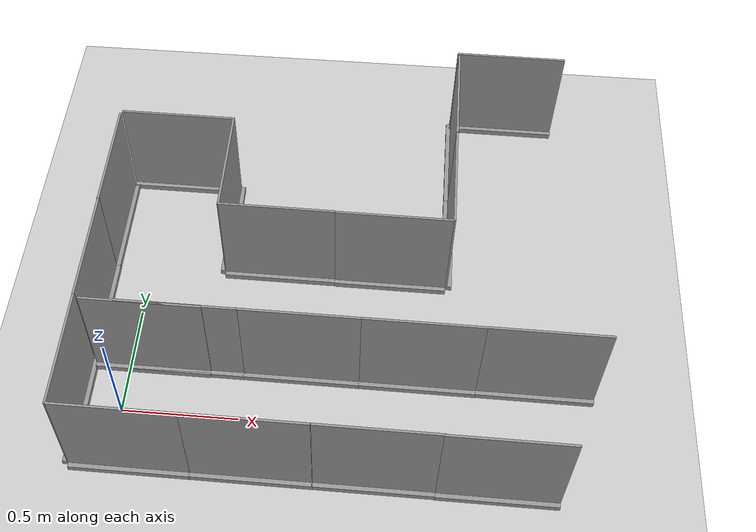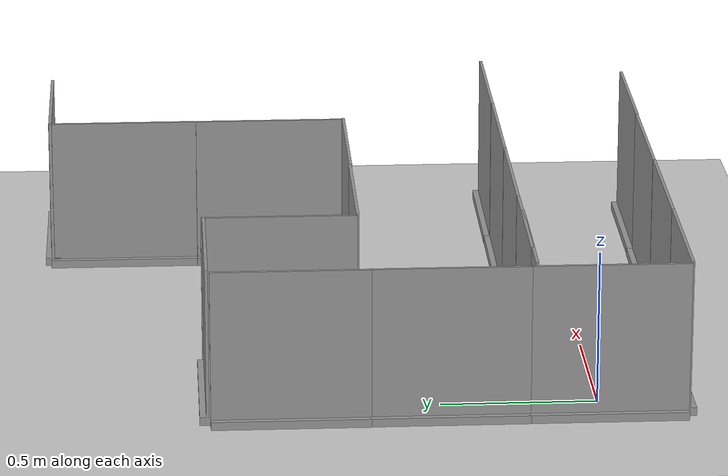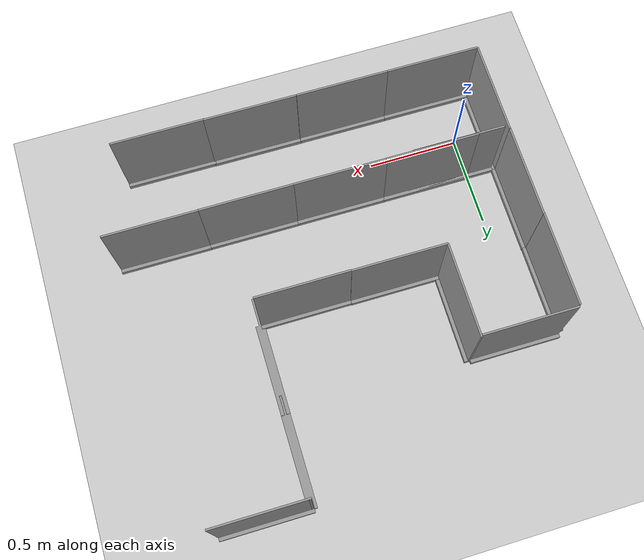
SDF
<sdf version="1.7">
 <world name="default">
  <model name="ground_plane">
   <static>1</static>
   <link name="link">
    <collision name="collision">
     <geometry><plane><normal>0 0 1</normal><size>100 100</size></plane></geometry>
     <surface>
      <contact><collide_bitmask>65535</collide_bitmask></contact>
      <friction><ode><mu>100</mu><mu2>50</mu2></ode></friction>
     </surface>
    </collision>
    <visual name="visual">
     <cast_shadows>0</cast_shadows>
     <geometry><plane><normal>0 0 1</normal><size>100 100</size></plane></geometry>
     <material>
      <script><uri>file://media/materials/scripts/gazebo.material</uri><name>Gazebo/Grey</name></script>
     </material>
    </visual>
   </link>
  </model>
  <model name="Labyrinth_clone_0_clone">
   <link name="link_0">
    <inertial>
     <mass>1</mass>
     <inertia>
      <ixx>0.166667</ixx>
      <ixy>0</ixy>
      <ixz>0</ixz>
      <iyy>0.166667</iyy>
      <iyz>0</iyz>
      <izz>0.166667</izz>
     </inertia>
    </inertial>
    <visual name="visual">
     <geometry>
      <mesh><uri>/home/michael/turtlebot_ws/src/worlds/Labyrinth.dae</uri><scale>1 1 1</scale></mesh>
     </geometry>
     <material>
      <lighting>1</lighting>
      <script><uri>file://media/materials/scripts/gazebo.material</uri><name>Gazebo/Grey</name></script>
      <shader type="pixel"/>
     </material>
    </visual>
    <collision name="collision">
     <geometry>
      <mesh><uri>/home/michael/turtlebot_ws/src/worlds/Labyrinth.dae</uri><scale>1 1 1</scale></mesh>
     </geometry>
     <surface>
      <friction>
       <ode><mu>1</mu><mu2>1</mu2><fdir1>0 0 0</fdir1><slip1>0</slip1><slip2>0</slip2></ode>
       <torsional>
        <coefficient>1</coefficient>
        <patch_radius>0</patch_radius>
        <surface_radius>0</surface_radius>
        <use_patch_radius>1</use_patch_radius>
        <ode><slip>0</slip></ode>
       </torsional>
      </friction>
      <bounce><restitution_coefficient>0</restitution_coefficient><threshold>1e+06</threshold></bounce>
      <contact>
       <collide_without_contact>0</collide_without_contact>
       <collide_without_contact_bitmask>1</collide_without_contact_bitmask>
       <collide_bitmask>1</collide_bitmask>
       <ode>
        <soft_cfm>0</soft_cfm>
        <soft_erp>0.2</soft_erp>
        <kp>1e+13</kp>
        <kd>1</kd>
        <max_vel>0.01</max_vel>
        <min_depth>0</min_depth>
       </ode>
       <bullet>
        <split_impulse>1</split_impulse>
        <split_impulse_penetration_threshold>-0.01</split_impulse_penetration_threshold>
        <soft_cfm>0</soft_cfm>
        <soft_erp>0.2</soft_erp>
        <kp>1e+13</kp>
        <kd>1</kd>
       </bullet>
      </contact>
     </surface>
    </collision>
   </link>
   <static>1</static>
   <pose>0.044521 -0.538425 -0.348859 0 -0 1.56533</pose>
  </model>
  <model name="Labyrinth_clone_0_clone_0">
   <link name="link_0">
    <inertial>
     <mass>1</mass>
     <inertia>
      <ixx>0.166667</ixx>
      <ixy>0</ixy>
      <ixz>0</ixz>
      <iyy>0.166667</iyy>
      <iyz>0</iyz>
      <izz>0.166667</izz>
     </inertia>
    </inertial>
    <visual name="visual">
     <geometry>
      <mesh><uri>/home/michael/turtlebot_ws/src/worlds/Labyrinth.dae</uri><scale>1 1 1</scale></mesh>
     </geometry>
     <material>
      <lighting>1</lighting>
      <script><uri>file://media/materials/scripts/gazebo.material</uri><name>Gazebo/Grey</name></script>
      <shader type="pixel"/>
     </material>
    </visual>
    <collision name="collision">
     <geometry>
      <mesh><uri>/home/michael/turtlebot_ws/src/worlds/Labyrinth.dae</uri><scale>1 1 1</scale></mesh>
     </geometry>
     <surface>
      <friction>
       <ode><mu>1</mu><mu2>1</mu2><fdir1>0 0 0</fdir1><slip1>0</slip1><slip2>0</slip2></ode>
       <torsional>
        <coefficient>1</coefficient>
        <patch_radius>0</patch_radius>
        <surface_radius>0</surface_radius>
        <use_patch_radius>1</use_patch_radius>
        <ode><slip>0</slip></ode>
       </torsional>
      </friction>
      <bounce><restitution_coefficient>0</restitution_coefficient><threshold>1e+06</threshold></bounce>
      <contact>
       <collide_without_contact>0</collide_without_contact>
       <collide_without_contact_bitmask>1</collide_without_contact_bitmask>
       <collide_bitmask>1</collide_bitmask>
       <ode>
        <soft_cfm>0</soft_cfm>
        <soft_erp>0.2</soft_erp>
        <kp>1e+13</kp>
        <kd>1</kd>
        <max_vel>0.01</max_vel>
        <min_depth>0</min_depth>
       </ode>
       <bullet>
        <split_impulse>1</split_impulse>
        <split_impulse_penetration_threshold>-0.01</split_impulse_penetration_threshold>
        <soft_cfm>0</soft_cfm>
        <soft_erp>0.2</soft_erp>
        <kp>1e+13</kp>
        <kd>1</kd>
       </bullet>
      </contact>
     </surface>
    </collision>
   </link>
   <static>1</static>
   <pose>0.549148 -0.540573 -0.348859 0 -0 1.56533</pose>
  </model>
  <model name="Labyrinth_clone_0_clone_1">
   <link name="link_0">
    <inertial>
     <mass>1</mass>
     <inertia>
      <ixx>0.166667</ixx>
      <ixy>0</ixy>
      <ixz>0</ixz>
      <iyy>0.166667</iyy>
      <iyz>0</iyz>
      <izz>0.166667</izz>
     </inertia>
    </inertial>
    <visual name="visual">
     <geometry>
      <mesh><uri>/home/michael/turtlebot_ws/src/worlds/Labyrinth.dae</uri><scale>1 1 1</scale></mesh>
     </geometry>
     <material>
      <lighting>1</lighting>
      <script><uri>file://media/materials/scripts/gazebo.material</uri><name>Gazebo/Grey</name></script>
      <shader type="pixel"/>
     </material>
    </visual>
    <collision name="collision">
     <geometry>
      <mesh><uri>/home/michael/turtlebot_ws/src/worlds/Labyrinth.dae</uri><scale>1 1 1</scale></mesh>
     </geometry>
     <surface>
      <friction>
       <ode><mu>1</mu><mu2>1</mu2><fdir1>0 0 0</fdir1><slip1>0</slip1><slip2>0</slip2></ode>
       <torsional>
        <coefficient>1</coefficient>
        <patch_radius>0</patch_radius>
        <surface_radius>0</surface_radius>
        <use_patch_radius>1</use_patch_radius>
        <ode><slip>0</slip></ode>
       </torsional>
      </friction>
      <bounce><restitution_coefficient>0</restitution_coefficient><threshold>1e+06</threshold></bounce>
      <contact>
       <collide_without_contact>0</collide_without_contact>
       <collide_without_contact_bitmask>1</collide_without_contact_bitmask>
       <collide_bitmask>1</collide_bitmask>
       <ode>
        <soft_cfm>0</soft_cfm>
        <soft_erp>0.2</soft_erp>
        <kp>1e+13</kp>
        <kd>1</kd>
        <max_vel>0.01</max_vel>
        <min_depth>0</min_depth>
       </ode>
       <bullet>
        <split_impulse>1</split_impulse>
        <split_impulse_penetration_threshold>-0.01</split_impulse_penetration_threshold>
        <soft_cfm>0</soft_cfm>
        <soft_erp>0.2</soft_erp>
        <kp>1e+13</kp>
        <kd>1</kd>
       </bullet>
      </contact>
     </surface>
    </collision>
   </link>
   <static>1</static>
   <pose>1.04626 -0.544925 -0.348859 0 -0 1.56533</pose>
  </model>
  <model name="Labyrinth_clone_0_clone_5_clone_1">
   <link name="link_0">
    <inertial>
     <mass>1</mass>
     <inertia>
      <ixx>0.166667</ixx>
      <ixy>0</ixy>
      <ixz>0</ixz>
      <iyy>0.166667</iyy>
      <iyz>0</iyz>
      <izz>0.166667</izz>
     </inertia>
    </inertial>
    <visual name="visual">
     <geometry>
      <mesh><uri>/home/michael/turtlebot_ws/src/worlds/Labyrinth.dae</uri><scale>1 1 1</scale></mesh>
     </geometry>
     <material>
      <lighting>1</lighting>
      <script><uri>file://media/materials/scripts/gazebo.material</uri><name>Gazebo/Grey</name></script>
      <shader type="pixel"/>
     </material>
    </visual>
    <collision name="collision">
     <geometry>
      <mesh><uri>/home/michael/turtlebot_ws/src/worlds/Labyrinth.dae</uri><scale>1 1 1</scale></mesh>
     </geometry>
     <surface>
      <friction>
       <ode><mu>1</mu><mu2>1</mu2><fdir1>0 0 0</fdir1><slip1>0</slip1><slip2>0</slip2></ode>
       <torsional>
        <coefficient>1</coefficient>
        <patch_radius>0</patch_radius>
        <surface_radius>0</surface_radius>
        <use_patch_radius>1</use_patch_radius>
        <ode><slip>0</slip></ode>
       </torsional>
      </friction>
      <bounce><restitution_coefficient>0</restitution_coefficient><threshold>1e+06</threshold></bounce>
      <contact>
       <collide_without_contact>0</collide_without_contact>
       <collide_without_contact_bitmask>1</collide_without_contact_bitmask>
       <collide_bitmask>1</collide_bitmask>
       <ode>
        <soft_cfm>0</soft_cfm>
        <soft_erp>0.2</soft_erp>
        <kp>1e+13</kp>
        <kd>1</kd>
        <max_vel>0.01</max_vel>
        <min_depth>0</min_depth>
       </ode>
       <bullet>
        <split_impulse>1</split_impulse>
        <split_impulse_penetration_threshold>-0.01</split_impulse_penetration_threshold>
        <soft_cfm>0</soft_cfm>
        <soft_erp>0.2</soft_erp>
        <kp>1e+13</kp>
        <kd>1</kd>
       </bullet>
      </contact>
     </surface>
    </collision>
   </link>
   <static>1</static>
   <pose>1.20215 -0.057675 -0.348859 0 -0 1.56533</pose>
  </model>
  <model name="Labyrinth_clone_0_clone_5_clone_2">
   <link name="link_0">
    <inertial>
     <mass>1</mass>
     <inertia>
      <ixx>0.166667</ixx>
      <ixy>0</ixy>
      <ixz>0</ixz>
      <iyy>0.166667</iyy>
      <iyz>0</iyz>
      <izz>0.166667</izz>
     </inertia>
    </inertial>
    <visual name="visual">
     <geometry>
      <mesh><uri>/home/michael/turtlebot_ws/src/worlds/Labyrinth.dae</uri><scale>1 1 1</scale></mesh>
     </geometry>
     <material>
      <lighting>1</lighting>
      <script><uri>file://media/materials/scripts/gazebo.material</uri><name>Gazebo/Grey</name></script>
      <shader type="pixel"/>
     </material>
    </visual>
    <collision name="collision">
     <geometry>
      <mesh><uri>/home/michael/turtlebot_ws/src/worlds/Labyrinth.dae</uri><scale>1 1 1</scale></mesh>
     </geometry>
     <surface>
      <friction>
       <ode><mu>1</mu><mu2>1</mu2><fdir1>0 0 0</fdir1><slip1>0</slip1><slip2>0</slip2></ode>
       <torsional>
        <coefficient>1</coefficient>
        <patch_radius>0</patch_radius>
        <surface_radius>0</surface_radius>
        <use_patch_radius>1</use_patch_radius>
        <ode><slip>0</slip></ode>
       </torsional>
      </friction>
      <bounce><restitution_coefficient>0</restitution_coefficient><threshold>1e+06</threshold></bounce>
      <contact>
       <collide_without_contact>0</collide_without_contact>
       <collide_without_contact_bitmask>1</collide_without_contact_bitmask>
       <collide_bitmask>1</collide_bitmask>
       <ode>
        <soft_cfm>0</soft_cfm>
        <soft_erp>0.2</soft_erp>
        <kp>1e+13</kp>
        <kd>1</kd>
        <max_vel>0.01</max_vel>
        <min_depth>0</min_depth>
       </ode>
       <bullet>
        <split_impulse>1</split_impulse>
        <split_impulse_penetration_threshold>-0.01</split_impulse_penetration_threshold>
        <soft_cfm>0</soft_cfm>
        <soft_erp>0.2</soft_erp>
        <kp>1e+13</kp>
        <kd>1</kd>
       </bullet>
      </contact>
     </surface>
    </collision>
   </link>
   <static>1</static>
   <pose>0.700941 -0.055791 -0.348859 0 -0 1.56533</pose>
  </model>
  <model name="Labyrinth_clone_0_clone_5_clone_3">
   <link name="link_0">
    <inertial>
     <mass>1</mass>
     <inertia>
      <ixx>0.166667</ixx>
      <ixy>0</ixy>
      <ixz>0</ixz>
      <iyy>0.166667</iyy>
      <iyz>0</iyz>
      <izz>0.166667</izz>
     </inertia>
    </inertial>
    <visual name="visual">
     <geometry>
      <mesh><uri>/home/michael/turtlebot_ws/src/worlds/Labyrinth.dae</uri><scale>1 1 1</scale></mesh>
     </geometry>
     <material>
      <lighting>1</lighting>
      <script><uri>file://media/materials/scripts/gazebo.material</uri><name>Gazebo/Grey</name></script>
      <shader type="pixel"/>
     </material>
    </visual>
    <collision name="collision">
     <geometry>
      <mesh><uri>/home/michael/turtlebot_ws/src/worlds/Labyrinth.dae</uri><scale>1 1 1</scale></mesh>
     </geometry>
     <surface>
      <friction>
       <ode><mu>1</mu><mu2>1</mu2><fdir1>0 0 0</fdir1><slip1>0</slip1><slip2>0</slip2></ode>
       <torsional>
        <coefficient>1</coefficient>
        <patch_radius>0</patch_radius>
        <surface_radius>0</surface_radius>
        <use_patch_radius>1</use_patch_radius>
        <ode><slip>0</slip></ode>
       </torsional>
      </friction>
      <bounce><restitution_coefficient>0</restitution_coefficient><threshold>1e+06</threshold></bounce>
      <contact>
       <collide_without_contact>0</collide_without_contact>
       <collide_without_contact_bitmask>1</collide_without_contact_bitmask>
       <collide_bitmask>1</collide_bitmask>
       <ode>
        <soft_cfm>0</soft_cfm>
        <soft_erp>0.2</soft_erp>
        <kp>1e+13</kp>
        <kd>1</kd>
        <max_vel>0.01</max_vel>
        <min_depth>0</min_depth>
       </ode>
       <bullet>
        <split_impulse>1</split_impulse>
        <split_impulse_penetration_threshold>-0.01</split_impulse_penetration_threshold>
        <soft_cfm>0</soft_cfm>
        <soft_erp>0.2</soft_erp>
        <kp>1e+13</kp>
        <kd>1</kd>
       </bullet>
      </contact>
     </surface>
    </collision>
   </link>
   <static>1</static>
   <pose>0.201414 -0.053495 -0.348859 0 -0 1.56533</pose>
  </model>
  <model name="Labyrinth_clone_0_clone_5_clone_4">
   <link name="link_0">
    <inertial>
     <mass>1</mass>
     <inertia>
      <ixx>0.166667</ixx>
      <ixy>0</ixy>
      <ixz>0</ixz>
      <iyy>0.166667</iyy>
      <iyz>0</iyz>
      <izz>0.166667</izz>
     </inertia>
    </inertial>
    <visual name="visual">
     <geometry>
      <mesh><uri>/home/michael/turtlebot_ws/src/worlds/Labyrinth.dae</uri><scale>1 1 1</scale></mesh>
     </geometry>
     <material>
      <lighting>1</lighting>
      <script><uri>file://media/materials/scripts/gazebo.material</uri><name>Gazebo/Grey</name></script>
      <shader type="pixel"/>
     </material>
    </visual>
    <collision name="collision">
     <geometry>
      <mesh><uri>/home/michael/turtlebot_ws/src/worlds/Labyrinth.dae</uri><scale>1 1 1</scale></mesh>
     </geometry>
     <surface>
      <friction>
       <ode><mu>1</mu><mu2>1</mu2><fdir1>0 0 0</fdir1><slip1>0</slip1><slip2>0</slip2></ode>
       <torsional>
        <coefficient>1</coefficient>
        <patch_radius>0</patch_radius>
        <surface_radius>0</surface_radius>
        <use_patch_radius>1</use_patch_radius>
        <ode><slip>0</slip></ode>
       </torsional>
      </friction>
      <bounce><restitution_coefficient>0</restitution_coefficient><threshold>1e+06</threshold></bounce>
      <contact>
       <collide_without_contact>0</collide_without_contact>
       <collide_without_contact_bitmask>1</collide_without_contact_bitmask>
       <collide_bitmask>1</collide_bitmask>
       <ode>
        <soft_cfm>0</soft_cfm>
        <soft_erp>0.2</soft_erp>
        <kp>1e+13</kp>
        <kd>1</kd>
        <max_vel>0.01</max_vel>
        <min_depth>0</min_depth>
       </ode>
       <bullet>
        <split_impulse>1</split_impulse>
        <split_impulse_penetration_threshold>-0.01</split_impulse_penetration_threshold>
        <soft_cfm>0</soft_cfm>
        <soft_erp>0.2</soft_erp>
        <kp>1e+13</kp>
        <kd>1</kd>
       </bullet>
      </contact>
     </surface>
    </collision>
   </link>
   <static>1</static>
   <pose>-0.295341 -0.051147 -0.348859 0 -0 1.56533</pose>
  </model>
  <model name="Labyrinth_clone_0_clone_5_clone_5">
   <link name="link_0">
    <inertial>
     <mass>1</mass>
     <inertia>
      <ixx>0.166667</ixx>
      <ixy>0</ixy>
      <ixz>0</ixz>
      <iyy>0.166667</iyy>
      <iyz>0</iyz>
      <izz>0.166667</izz>
     </inertia>
    </inertial>
    <visual name="visual">
     <geometry>
      <mesh><uri>/home/michael/turtlebot_ws/src/worlds/Labyrinth.dae</uri><scale>1 1 1</scale></mesh>
     </geometry>
     <material>
      <lighting>1</lighting>
      <script><uri>file://media/materials/scripts/gazebo.material</uri><name>Gazebo/Grey</name></script>
      <shader type="pixel"/>
     </material>
    </visual>
    <collision name="collision">
     <geometry>
      <mesh><uri>/home/michael/turtlebot_ws/src/worlds/Labyrinth.dae</uri><scale>1 1 1</scale></mesh>
     </geometry>
     <surface>
      <friction>
       <ode><mu>1</mu><mu2>1</mu2><fdir1>0 0 0</fdir1><slip1>0</slip1><slip2>0</slip2></ode>
       <torsional>
        <coefficient>1</coefficient>
        <patch_radius>0</patch_radius>
        <surface_radius>0</surface_radius>
        <use_patch_radius>1</use_patch_radius>
        <ode><slip>0</slip></ode>
       </torsional>
      </friction>
      <bounce><restitution_coefficient>0</restitution_coefficient><threshold>1e+06</threshold></bounce>
      <contact>
       <collide_without_contact>0</collide_without_contact>
       <collide_without_contact_bitmask>1</collide_without_contact_bitmask>
       <collide_bitmask>1</collide_bitmask>
       <ode>
        <soft_cfm>0</soft_cfm>
        <soft_erp>0.2</soft_erp>
        <kp>1e+13</kp>
        <kd>1</kd>
        <max_vel>0.01</max_vel>
        <min_depth>0</min_depth>
       </ode>
       <bullet>
        <split_impulse>1</split_impulse>
        <split_impulse_penetration_threshold>-0.01</split_impulse_penetration_threshold>
        <soft_cfm>0</soft_cfm>
        <soft_erp>0.2</soft_erp>
        <kp>1e+13</kp>
        <kd>1</kd>
       </bullet>
      </contact>
     </surface>
    </collision>
   </link>
   <static>1</static>
   <pose>-0.43877 -0.053069 -0.348859 0 -0 1.56533</pose>
  </model>
  <model name="Labyrinth_clone_0_clone_5_clone_10">
   <link name="link_0">
    <inertial>
     <mass>1</mass>
     <inertia>
      <ixx>0.166667</ixx>
      <ixy>0</ixy>
      <ixz>0</ixz>
      <iyy>0.166667</iyy>
      <iyz>0</iyz>
      <izz>0.166667</izz>
     </inertia>
    </inertial>
    <visual name="visual">
     <geometry>
      <mesh><uri>/home/michael/turtlebot_ws/src/worlds/Labyrinth.dae</uri><scale>1 1 1</scale></mesh>
     </geometry>
     <material>
      <lighting>1</lighting>
      <script><uri>file://media/materials/scripts/gazebo.material</uri><name>Gazebo/Grey</name></script>
      <shader type="pixel"/>
     </material>
    </visual>
    <collision name="collision">
     <geometry>
      <mesh><uri>/home/michael/turtlebot_ws/src/worlds/Labyrinth.dae</uri><scale>1 1 1</scale></mesh>
     </geometry>
     <surface>
      <friction>
       <ode><mu>1</mu><mu2>1</mu2><fdir1>0 0 0</fdir1><slip1>0</slip1><slip2>0</slip2></ode>
       <torsional>
        <coefficient>1</coefficient>
        <patch_radius>0</patch_radius>
        <surface_radius>0</surface_radius>
        <use_patch_radius>1</use_patch_radius>
        <ode><slip>0</slip></ode>
       </torsional>
      </friction>
      <bounce><restitution_coefficient>0</restitution_coefficient><threshold>1e+06</threshold></bounce>
      <contact>
       <collide_without_contact>0</collide_without_contact>
       <collide_without_contact_bitmask>1</collide_without_contact_bitmask>
       <collide_bitmask>1</collide_bitmask>
       <ode>
        <soft_cfm>0</soft_cfm>
        <soft_erp>0.2</soft_erp>
        <kp>1e+13</kp>
        <kd>1</kd>
        <max_vel>0.01</max_vel>
        <min_depth>0</min_depth>
       </ode>
       <bullet>
        <split_impulse>1</split_impulse>
        <split_impulse_penetration_threshold>-0.01</split_impulse_penetration_threshold>
        <soft_cfm>0</soft_cfm>
        <soft_erp>0.2</soft_erp>
        <kp>1e+13</kp>
        <kd>1</kd>
       </bullet>
      </contact>
     </surface>
    </collision>
   </link>
   <static>1</static>
   <pose>1.05521 1.47328 -0.348859 0 -0 1.56533</pose>
  </model>
  <model name="Labyrinth_clone_0_clone_5_clone_11">
   <link name="link_0">
    <inertial>
     <mass>1</mass>
     <inertia>
      <ixx>0.166667</ixx>
      <ixy>0</ixy>
      <ixz>0</ixz>
      <iyy>0.166667</iyy>
      <iyz>0</iyz>
      <izz>0.166667</izz>
     </inertia>
    </inertial>
    <visual name="visual">
     <geometry>
      <mesh><uri>/home/michael/turtlebot_ws/src/worlds/Labyrinth.dae</uri><scale>1 1 1</scale></mesh>
     </geometry>
     <material>
      <lighting>1</lighting>
      <script><uri>file://media/materials/scripts/gazebo.material</uri><name>Gazebo/Grey</name></script>
      <shader type="pixel"/>
     </material>
    </visual>
    <collision name="collision">
     <geometry>
      <mesh><uri>/home/michael/turtlebot_ws/src/worlds/Labyrinth.dae</uri><scale>1 1 1</scale></mesh>
     </geometry>
     <surface>
      <friction>
       <ode><mu>1</mu><mu2>1</mu2><fdir1>0 0 0</fdir1><slip1>0</slip1><slip2>0</slip2></ode>
       <torsional>
        <coefficient>1</coefficient>
        <patch_radius>0</patch_radius>
        <surface_radius>0</surface_radius>
        <use_patch_radius>1</use_patch_radius>
        <ode><slip>0</slip></ode>
       </torsional>
      </friction>
      <bounce><restitution_coefficient>0</restitution_coefficient><threshold>1e+06</threshold></bounce>
      <contact>
       <collide_without_contact>0</collide_without_contact>
       <collide_without_contact_bitmask>1</collide_without_contact_bitmask>
       <collide_bitmask>1</collide_bitmask>
       <ode>
        <soft_cfm>0</soft_cfm>
        <soft_erp>0.2</soft_erp>
        <kp>1e+13</kp>
        <kd>1</kd>
        <max_vel>0.01</max_vel>
        <min_depth>0</min_depth>
       </ode>
       <bullet>
        <split_impulse>1</split_impulse>
        <split_impulse_penetration_threshold>-0.01</split_impulse_penetration_threshold>
        <soft_cfm>0</soft_cfm>
        <soft_erp>0.2</soft_erp>
        <kp>1e+13</kp>
        <kd>1</kd>
       </bullet>
      </contact>
     </surface>
    </collision>
   </link>
   <static>1</static>
   <pose>0.556394 0.471335 -0.348859 0 -0 1.56533</pose>
  </model>
  <model name="Labyrinth_clone_0_clone_5_clone_12">
   <link name="link_0">
    <inertial>
     <mass>1</mass>
     <inertia>
      <ixx>0.166667</ixx>
      <ixy>0</ixy>
      <ixz>0</ixz>
      <iyy>0.166667</iyy>
      <iyz>0</iyz>
      <izz>0.166667</izz>
     </inertia>
    </inertial>
    <visual name="visual">
     <geometry>
      <mesh><uri>/home/michael/turtlebot_ws/src/worlds/Labyrinth.dae</uri><scale>1 1 1</scale></mesh>
     </geometry>
     <material>
      <lighting>1</lighting>
      <script><uri>file://media/materials/scripts/gazebo.material</uri><name>Gazebo/Grey</name></script>
      <shader type="pixel"/>
     </material>
    </visual>
    <collision name="collision">
     <geometry>
      <mesh><uri>/home/michael/turtlebot_ws/src/worlds/Labyrinth.dae</uri><scale>1 1 1</scale></mesh>
     </geometry>
     <surface>
      <friction>
       <ode><mu>1</mu><mu2>1</mu2><fdir1>0 0 0</fdir1><slip1>0</slip1><slip2>0</slip2></ode>
       <torsional>
        <coefficient>1</coefficient>
        <patch_radius>0</patch_radius>
        <surface_radius>0</surface_radius>
        <use_patch_radius>1</use_patch_radius>
        <ode><slip>0</slip></ode>
       </torsional>
      </friction>
      <bounce><restitution_coefficient>0</restitution_coefficient><threshold>1e+06</threshold></bounce>
      <contact>
       <collide_without_contact>0</collide_without_contact>
       <collide_without_contact_bitmask>1</collide_without_contact_bitmask>
       <collide_bitmask>1</collide_bitmask>
       <ode>
        <soft_cfm>0</soft_cfm>
        <soft_erp>0.2</soft_erp>
        <kp>1e+13</kp>
        <kd>1</kd>
        <max_vel>0.01</max_vel>
        <min_depth>0</min_depth>
       </ode>
       <bullet>
        <split_impulse>1</split_impulse>
        <split_impulse_penetration_threshold>-0.01</split_impulse_penetration_threshold>
        <soft_cfm>0</soft_cfm>
        <soft_erp>0.2</soft_erp>
        <kp>1e+13</kp>
        <kd>1</kd>
       </bullet>
      </contact>
     </surface>
    </collision>
   </link>
   <static>1</static>
   <pose>0.053888 0.476177 -0.348859 0 -0 1.56533</pose>
  </model>
  <model name="Labyrinth_clone_clone_1">
   <link name="link_0">
    <inertial>
     <mass>1</mass>
     <inertia>
      <ixx>0.166667</ixx>
      <ixy>0</ixy>
      <ixz>0</ixz>
      <iyy>0.166667</iyy>
      <iyz>0</iyz>
      <izz>0.166667</izz>
     </inertia>
    </inertial>
    <visual name="visual">
     <geometry>
      <mesh><uri>/home/michael/turtlebot_ws/src/worlds/Labyrinth.dae</uri><scale>1 1 1</scale></mesh>
     </geometry>
     <material>
      <lighting>1</lighting>
      <script><uri>file://media/materials/scripts/gazebo.material</uri><name>Gazebo/Grey</name></script>
      <shader type="pixel"/>
     </material>
    </visual>
    <collision name="collision">
     <geometry>
      <mesh><uri>/home/michael/turtlebot_ws/src/worlds/Labyrinth.dae</uri><scale>1 1 1</scale></mesh>
     </geometry>
     <surface>
      <friction>
       <ode><mu>1</mu><mu2>1</mu2><fdir1>0 0 0</fdir1><slip1>0</slip1><slip2>0</slip2></ode>
       <torsional>
        <coefficient>1</coefficient>
        <patch_radius>0</patch_radius>
        <surface_radius>0</surface_radius>
        <use_patch_radius>1</use_patch_radius>
        <ode><slip>0</slip></ode>
       </torsional>
      </friction>
      <bounce><restitution_coefficient>0</restitution_coefficient><threshold>1e+06</threshold></bounce>
      <contact>
       <collide_without_contact>0</collide_without_contact>
       <collide_without_contact_bitmask>1</collide_without_contact_bitmask>
       <collide_bitmask>1</collide_bitmask>
       <ode>
        <soft_cfm>0</soft_cfm>
        <soft_erp>0.2</soft_erp>
        <kp>1e+13</kp>
        <kd>1</kd>
        <max_vel>0.01</max_vel>
        <min_depth>0</min_depth>
       </ode>
       <bullet>
        <split_impulse>1</split_impulse>
        <split_impulse_penetration_threshold>-0.01</split_impulse_penetration_threshold>
        <soft_cfm>0</soft_cfm>
        <soft_erp>0.2</soft_erp>
        <kp>1e+13</kp>
        <kd>1</kd>
       </bullet>
      </contact>
     </surface>
    </collision>
   </link>
   <static>1</static>
   <pose>-0.436341 1.52184 -0.352876 0 -0 0</pose>
  </model>
  <model name="Labyrinth_clone_clone_2">
   <link name="link_0">
    <inertial>
     <mass>1</mass>
     <inertia>
      <ixx>0.166667</ixx>
      <ixy>0</ixy>
      <ixz>0</ixz>
      <iyy>0.166667</iyy>
      <iyz>0</iyz>
      <izz>0.166667</izz>
     </inertia>
    </inertial>
    <visual name="visual">
     <geometry>
      <mesh><uri>/home/michael/turtlebot_ws/src/worlds/Labyrinth.dae</uri><scale>1 1 1</scale></mesh>
     </geometry>
     <material>
      <lighting>1</lighting>
      <script><uri>file://media/materials/scripts/gazebo.material</uri><name>Gazebo/Grey</name></script>
      <shader type="pixel"/>
     </material>
    </visual>
    <collision name="collision">
     <geometry>
      <mesh><uri>/home/michael/turtlebot_ws/src/worlds/Labyrinth.dae</uri><scale>1 1 1</scale></mesh>
     </geometry>
     <surface>
      <friction>
       <ode><mu>1</mu><mu2>1</mu2><fdir1>0 0 0</fdir1><slip1>0</slip1><slip2>0</slip2></ode>
       <torsional>
        <coefficient>1</coefficient>
        <patch_radius>0</patch_radius>
        <surface_radius>0</surface_radius>
        <use_patch_radius>1</use_patch_radius>
        <ode><slip>0</slip></ode>
       </torsional>
      </friction>
      <bounce><restitution_coefficient>0</restitution_coefficient><threshold>1e+06</threshold></bounce>
      <contact>
       <collide_without_contact>0</collide_without_contact>
       <collide_without_contact_bitmask>1</collide_without_contact_bitmask>
       <collide_bitmask>1</collide_bitmask>
       <ode>
        <soft_cfm>0</soft_cfm>
        <soft_erp>0.2</soft_erp>
        <kp>1e+13</kp>
        <kd>1</kd>
        <max_vel>0.01</max_vel>
        <min_depth>0</min_depth>
       </ode>
       <bullet>
        <split_impulse>1</split_impulse>
        <split_impulse_penetration_threshold>-0.01</split_impulse_penetration_threshold>
        <soft_cfm>0</soft_cfm>
        <soft_erp>0.2</soft_erp>
        <kp>1e+13</kp>
        <kd>1</kd>
       </bullet>
      </contact>
     </surface>
    </collision>
   </link>
   <static>1</static>
   <pose>0.079707 1.53712 -0.352876 0 -0 0</pose>
  </model>
  <model name="Labyrinth_clone_0_clone_5_clone_12_clone">
   <link name="link_0">
    <inertial>
     <mass>1</mass>
     <inertia>
      <ixx>0.166667</ixx>
      <ixy>0</ixy>
      <ixz>0</ixz>
      <iyy>0.166667</iyy>
      <iyz>0</iyz>
      <izz>0.166667</izz>
     </inertia>
    </inertial>
    <visual name="visual">
     <geometry>
      <mesh><uri>/home/michael/turtlebot_ws/src/worlds/Labyrinth.dae</uri><scale>1 1 1</scale></mesh>
     </geometry>
     <material>
      <lighting>1</lighting>
      <script><uri>file://media/materials/scripts/gazebo.material</uri><name>Gazebo/Grey</name></script>
      <shader type="pixel"/>
     </material>
    </visual>
    <collision name="collision">
     <geometry>
      <mesh><uri>/home/michael/turtlebot_ws/src/worlds/Labyrinth.dae</uri><scale>1 1 1</scale></mesh>
     </geometry>
     <surface>
      <friction>
       <ode><mu>1</mu><mu2>1</mu2><fdir1>0 0 0</fdir1><slip1>0</slip1><slip2>0</slip2></ode>
       <torsional>
        <coefficient>1</coefficient>
        <patch_radius>0</patch_radius>
        <surface_radius>0</surface_radius>
        <use_patch_radius>1</use_patch_radius>
        <ode><slip>0</slip></ode>
       </torsional>
      </friction>
      <bounce><restitution_coefficient>0</restitution_coefficient><threshold>1e+06</threshold></bounce>
      <contact>
       <collide_without_contact>0</collide_without_contact>
       <collide_without_contact_bitmask>1</collide_without_contact_bitmask>
       <collide_bitmask>1</collide_bitmask>
       <ode>
        <soft_cfm>0</soft_cfm>
        <soft_erp>0.2</soft_erp>
        <kp>1e+13</kp>
        <kd>1</kd>
        <max_vel>0.01</max_vel>
        <min_depth>0</min_depth>
       </ode>
       <bullet>
        <split_impulse>1</split_impulse>
        <split_impulse_penetration_threshold>-0.01</split_impulse_penetration_threshold>
        <soft_cfm>0</soft_cfm>
        <soft_erp>0.2</soft_erp>
        <kp>1e+13</kp>
        <kd>1</kd>
       </bullet>
      </contact>
     </surface>
    </collision>
   </link>
   <static>1</static>
   <pose>-0.454364 0.973748 -0.348859 0 -0 1.56533</pose>
  </model>
  <model name="Labyrinth_clone_0_clone_clone">
   <link name="link_0">
    <inertial>
     <mass>1</mass>
     <inertia>
      <ixx>0.166667</ixx>
      <ixy>0</ixy>
      <ixz>0</ixz>
      <iyy>0.166667</iyy>
      <iyz>0</iyz>
      <izz>0.166667</izz>
     </inertia>
    </inertial>
    <visual name="visual">
     <geometry>
      <mesh><uri>/home/michael/turtlebot_ws/src/worlds/Labyrinth.dae</uri><scale>1 1 1</scale></mesh>
     </geometry>
     <material>
      <lighting>1</lighting>
      <script><uri>file://media/materials/scripts/gazebo.material</uri><name>Gazebo/Grey</name></script>
      <shader type="pixel"/>
     </material>
    </visual>
    <collision name="collision">
     <geometry>
      <mesh><uri>/home/michael/turtlebot_ws/src/worlds/Labyrinth.dae</uri><scale>1 1 1</scale></mesh>
     </geometry>
     <surface>
      <friction>
       <ode><mu>1</mu><mu2>1</mu2><fdir1>0 0 0</fdir1><slip1>0</slip1><slip2>0</slip2></ode>
       <torsional>
        <coefficient>1</coefficient>
        <patch_radius>0</patch_radius>
        <surface_radius>0</surface_radius>
        <use_patch_radius>1</use_patch_radius>
        <ode><slip>0</slip></ode>
       </torsional>
      </friction>
      <bounce><restitution_coefficient>0</restitution_coefficient><threshold>1e+06</threshold></bounce>
      <contact>
       <collide_without_contact>0</collide_without_contact>
       <collide_without_contact_bitmask>1</collide_without_contact_bitmask>
       <collide_bitmask>1</collide_bitmask>
       <ode>
        <soft_cfm>0</soft_cfm>
        <soft_erp>0.2</soft_erp>
        <kp>1e+13</kp>
        <kd>1</kd>
        <max_vel>0.01</max_vel>
        <min_depth>0</min_depth>
       </ode>
       <bullet>
        <split_impulse>1</split_impulse>
        <split_impulse_penetration_threshold>-0.01</split_impulse_penetration_threshold>
        <soft_cfm>0</soft_cfm>
        <soft_erp>0.2</soft_erp>
        <kp>1e+13</kp>
        <kd>1</kd>
       </bullet>
      </contact>
     </surface>
    </collision>
   </link>
   <static>1</static>
   <pose>-0.457028 -0.53617 -0.348859 0 -0 1.56533</pose>
  </model>
  <model name="Labyrinth_clone_clone_1_clone">
   <link name="link_0">
    <inertial>
     <mass>1</mass>
     <inertia>
      <ixx>0.166667</ixx>
      <ixy>0</ixy>
      <ixz>0</ixz>
      <iyy>0.166667</iyy>
      <iyz>0</iyz>
      <izz>0.166667</izz>
     </inertia>
    </inertial>
    <visual name="visual">
     <geometry>
      <mesh><uri>/home/michael/turtlebot_ws/src/worlds/Labyrinth.dae</uri><scale>1 1 1</scale></mesh>
     </geometry>
     <material>
      <lighting>1</lighting>
      <script><uri>file://media/materials/scripts/gazebo.material</uri><name>Gazebo/Grey</name></script>
      <shader type="pixel"/>
     </material>
    </visual>
    <collision name="collision">
     <geometry>
      <mesh><uri>/home/michael/turtlebot_ws/src/worlds/Labyrinth.dae</uri><scale>1 1 1</scale></mesh>
     </geometry>
     <surface>
      <friction>
       <ode><mu>1</mu><mu2>1</mu2><fdir1>0 0 0</fdir1><slip1>0</slip1><slip2>0</slip2></ode>
       <torsional>
        <coefficient>1</coefficient>
        <patch_radius>0</patch_radius>
        <surface_radius>0</surface_radius>
        <use_patch_radius>1</use_patch_radius>
        <ode><slip>0</slip></ode>
       </torsional>
      </friction>
      <bounce><restitution_coefficient>0</restitution_coefficient><threshold>1e+06</threshold></bounce>
      <contact>
       <collide_without_contact>0</collide_without_contact>
       <collide_without_contact_bitmask>1</collide_without_contact_bitmask>
       <collide_bitmask>1</collide_bitmask>
       <ode>
        <soft_cfm>0</soft_cfm>
        <soft_erp>0.2</soft_erp>
        <kp>1e+13</kp>
        <kd>1</kd>
        <max_vel>0.01</max_vel>
        <min_depth>0</min_depth>
       </ode>
       <bullet>
        <split_impulse>1</split_impulse>
        <split_impulse_penetration_threshold>-0.01</split_impulse_penetration_threshold>
        <soft_cfm>0</soft_cfm>
        <soft_erp>0.2</soft_erp>
        <kp>1e+13</kp>
        <kd>1</kd>
       </bullet>
      </contact>
     </surface>
    </collision>
   </link>
   <static>1</static>
   <pose>-0.434856 1.02345 -0.352876 0 -0 0</pose>
  </model>
  <model name="Labyrinth_clone_clone_1_clone_0">
   <link name="link_0">
    <inertial>
     <mass>1</mass>
     <inertia>
      <ixx>0.166667</ixx>
      <ixy>0</ixy>
      <ixz>0</ixz>
      <iyy>0.166667</iyy>
      <iyz>0</iyz>
      <izz>0.166667</izz>
     </inertia>
    </inertial>
    <visual name="visual">
     <geometry>
      <mesh><uri>/home/michael/turtlebot_ws/src/worlds/Labyrinth.dae</uri><scale>1 1 1</scale></mesh>
     </geometry>
     <material>
      <lighting>1</lighting>
      <script><uri>file://media/materials/scripts/gazebo.material</uri><name>Gazebo/Grey</name></script>
      <shader type="pixel"/>
     </material>
    </visual>
    <collision name="collision">
     <geometry>
      <mesh><uri>/home/michael/turtlebot_ws/src/worlds/Labyrinth.dae</uri><scale>1 1 1</scale></mesh>
     </geometry>
     <surface>
      <friction>
       <ode><mu>1</mu><mu2>1</mu2><fdir1>0 0 0</fdir1><slip1>0</slip1><slip2>0</slip2></ode>
       <torsional>
        <coefficient>1</coefficient>
        <patch_radius>0</patch_radius>
        <surface_radius>0</surface_radius>
        <use_patch_radius>1</use_patch_radius>
        <ode><slip>0</slip></ode>
       </torsional>
      </friction>
      <bounce><restitution_coefficient>0</restitution_coefficient><threshold>1e+06</threshold></bounce>
      <contact>
       <collide_without_contact>0</collide_without_contact>
       <collide_without_contact_bitmask>1</collide_without_contact_bitmask>
       <collide_bitmask>1</collide_bitmask>
       <ode>
        <soft_cfm>0</soft_cfm>
        <soft_erp>0.2</soft_erp>
        <kp>1e+13</kp>
        <kd>1</kd>
        <max_vel>0.01</max_vel>
        <min_depth>0</min_depth>
       </ode>
       <bullet>
        <split_impulse>1</split_impulse>
        <split_impulse_penetration_threshold>-0.01</split_impulse_penetration_threshold>
        <soft_cfm>0</soft_cfm>
        <soft_erp>0.2</soft_erp>
        <kp>1e+13</kp>
        <kd>1</kd>
       </bullet>
      </contact>
     </surface>
    </collision>
   </link>
   <static>1</static>
   <pose>-0.434087 0.52506 -0.352876 0 -0 0</pose>
  </model>
  <model name="Labyrinth_clone_clone_0_clone_0">
   <link name="link_0">
    <inertial>
     <mass>1</mass>
     <inertia>
      <ixx>0.166667</ixx>
      <ixy>0</ixy>
      <ixz>0</ixz>
      <iyy>0.166667</iyy>
      <iyz>0</iyz>
      <izz>0.166667</izz>
     </inertia>
    </inertial>
    <visual name="visual">
     <geometry>
      <mesh><uri>/home/michael/turtlebot_ws/src/worlds/Labyrinth.dae</uri><scale>1 1 1</scale></mesh>
     </geometry>
     <material>
      <lighting>1</lighting>
      <script><uri>file://media/materials/scripts/gazebo.material</uri><name>Gazebo/Grey</name></script>
      <shader type="pixel"/>
     </material>
    </visual>
    <collision name="collision">
     <geometry>
      <mesh><uri>/home/michael/turtlebot_ws/src/worlds/Labyrinth.dae</uri><scale>1 1 1</scale></mesh>
     </geometry>
     <surface>
      <friction>
       <ode><mu>1</mu><mu2>1</mu2><fdir1>0 0 0</fdir1><slip1>0</slip1><slip2>0</slip2></ode>
       <torsional>
        <coefficient>1</coefficient>
        <patch_radius>0</patch_radius>
        <surface_radius>0</surface_radius>
        <use_patch_radius>1</use_patch_radius>
        <ode><slip>0</slip></ode>
       </torsional>
      </friction>
      <bounce><restitution_coefficient>0</restitution_coefficient><threshold>1e+06</threshold></bounce>
      <contact>
       <collide_without_contact>0</collide_without_contact>
       <collide_without_contact_bitmask>1</collide_without_contact_bitmask>
       <collide_bitmask>1</collide_bitmask>
       <ode>
        <soft_cfm>0</soft_cfm>
        <soft_erp>0.2</soft_erp>
        <kp>1e+13</kp>
        <kd>1</kd>
        <max_vel>0.01</max_vel>
        <min_depth>0</min_depth>
       </ode>
       <bullet>
        <split_impulse>1</split_impulse>
        <split_impulse_penetration_threshold>-0.01</split_impulse_penetration_threshold>
        <soft_cfm>0</soft_cfm>
        <soft_erp>0.2</soft_erp>
        <kp>1e+13</kp>
        <kd>1</kd>
       </bullet>
      </contact>
     </surface>
    </collision>
   </link>
   <static>1</static>
   <pose>1.08945 1.53206 -0.352876 0 -0 0</pose>
  </model>
  <model name="Labyrinth_clone_clone_0_clone_1">
   <link name="link_0">
    <inertial>
     <mass>1</mass>
     <inertia>
      <ixx>0.166667</ixx>
      <ixy>0</ixy>
      <ixz>0</ixz>
      <iyy>0.166667</iyy>
      <iyz>0</iyz>
      <izz>0.166667</izz>
     </inertia>
    </inertial>
    <visual name="visual">
     <geometry>
      <mesh><uri>/home/michael/turtlebot_ws/src/worlds/Labyrinth.dae</uri><scale>1 1 1</scale></mesh>
     </geometry>
     <material>
      <lighting>1</lighting>
      <script><uri>file://media/materials/scripts/gazebo.material</uri><name>Gazebo/Grey</name></script>
      <shader type="pixel"/>
     </material>
    </visual>
    <collision name="collision">
     <geometry>
      <mesh><uri>/home/michael/turtlebot_ws/src/worlds/Labyrinth.dae</uri><scale>1 1 1</scale></mesh>
     </geometry>
     <surface>
      <friction>
       <ode><mu>1</mu><mu2>1</mu2><fdir1>0 0 0</fdir1><slip1>0</slip1><slip2>0</slip2></ode>
       <torsional>
        <coefficient>1</coefficient>
        <patch_radius>0</patch_radius>
        <surface_radius>0</surface_radius>
        <use_patch_radius>1</use_patch_radius>
        <ode><slip>0</slip></ode>
       </torsional>
      </friction>
      <bounce><restitution_coefficient>0</restitution_coefficient><threshold>1e+06</threshold></bounce>
      <contact>
       <collide_without_contact>0</collide_without_contact>
       <collide_without_contact_bitmask>1</collide_without_contact_bitmask>
       <collide_bitmask>1</collide_bitmask>
       <ode>
        <soft_cfm>0</soft_cfm>
        <soft_erp>0.2</soft_erp>
        <kp>1e+13</kp>
        <kd>1</kd>
        <max_vel>0.01</max_vel>
        <min_depth>0</min_depth>
       </ode>
       <bullet>
        <split_impulse>1</split_impulse>
        <split_impulse_penetration_threshold>-0.01</split_impulse_penetration_threshold>
        <soft_cfm>0</soft_cfm>
        <soft_erp>0.2</soft_erp>
        <kp>1e+13</kp>
        <kd>1</kd>
       </bullet>
      </contact>
     </surface>
    </collision>
   </link>
   <static>1</static>
   <pose>1.09002 2.03643 -0.352876 0 -0 0</pose>
  </model>
 </world>
</sdf>
